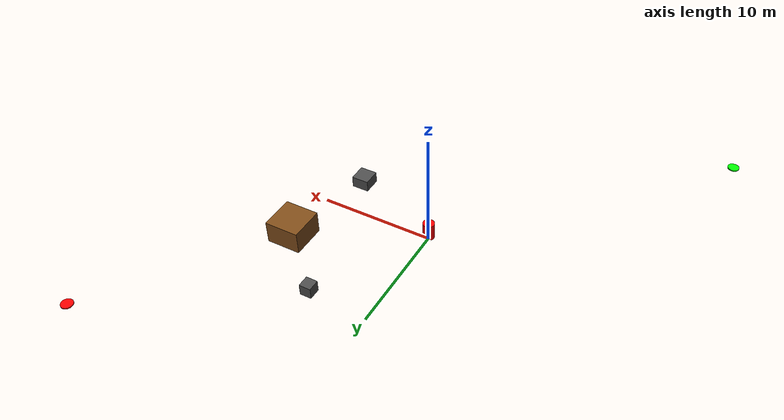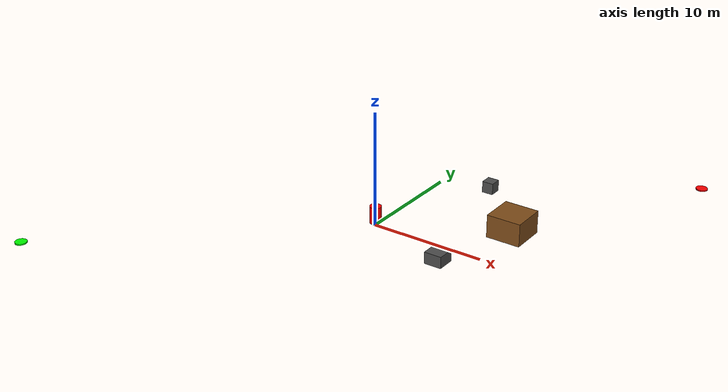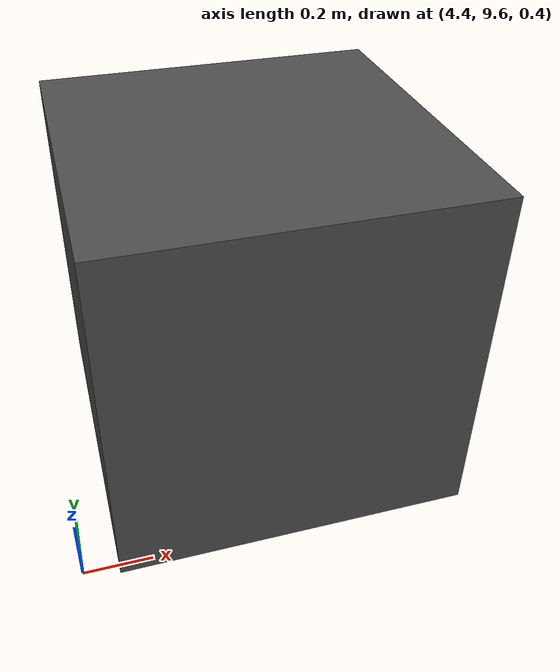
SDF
<sdf version="1.6">
 <world name="terrain_5_integrated">
  <physics type="ode">
   <real_time_update_rate>1000.0</real_time_update_rate>
   <max_step_size>0.001</max_step_size>
   <real_time_factor>1</real_time_factor>
  </physics>
  <include><uri>model://sun</uri></include>
  <model name="large_obstacle">
   <pose>10 5 1 0 0 0</pose>
   <static>true</static>
   <link name="link">
    <collision name="collision"><geometry><box><size>3 3 2</size></box></geometry></collision>
    <visual name="visual">
     <geometry><box><size>3 3 2</size></box></geometry>
     <material><ambient>0.5 0.3 0.1 1</ambient></material>
    </visual>
   </link>
  </model>
  <model name="small_obstacle_1">
   <pose>5 10 1 0 0 0</pose>
   <static>true</static>
   <link name="link">
    <collision name="collision"><geometry><box><size>1 1 1</size></box></geometry></collision>
    <visual name="visual">
     <geometry><box><size>1 1 1</size></box></geometry>
     <material><ambient>0.3 0.3 0.3 1</ambient></material>
    </visual>
   </link>
  </model>
  <model name="small_obstacle_2">
   <pose>8 -3 1 0 0 0</pose>
   <static>true</static>
   <link name="link">
    <collision name="collision"><geometry><box><size>1.5 1.5 1</size></box></geometry></collision>
    <visual name="visual">
     <geometry><box><size>1.5 1.5 1</size></box></geometry>
     <material><ambient>0.3 0.3 0.3 1</ambient></material>
    </visual>
   </link>
  </model>
  <model name="dynamic_obstacle">
   <pose>0 0 1 0 0 0</pose>
   <link name="link">
    <collision name="collision">
     <geometry><cylinder><radius>0.5</radius><length>1.5</length></cylinder></geometry>
    </collision>
    <visual name="visual">
     <geometry><cylinder><radius>0.5</radius><length>1.5</length></cylinder></geometry>
     <material><ambient>1 0 0 1</ambient></material>
    </visual>
    <inertial><mass>10</mass><inertia><ixx>1</ixx><iyy>1</iyy><izz>1</izz></inertia></inertial>
   </link>
   <plugin name="dynamic_motion" filename="libgazebo_ros_planar_move.so">
    <command_topic>cmd_vel_dynamic</command_topic>
    <odometry_topic>odom_dynamic</odometry_topic>
    <odometry_frame>odom</odometry_frame>
    <robot_base_frame>dynamic_obstacle</robot_base_frame>
    <odometry_rate>20.0</odometry_rate>
   </plugin>
  </model>
  <model name="spawn_point">
   <pose>-20 -20 1 0 0 0</pose>
   <static>true</static>
   <link name="link">
    <visual name="visual">
     <geometry><cylinder><radius>0.5</radius><length>0.1</length></cylinder></geometry>
     <material><ambient>0 1 0 1</ambient></material>
    </visual>
   </link>
  </model>
  <model name="goal_point">
   <pose>20 20 1 0 0 0</pose>
   <static>true</static>
   <link name="link">
    <visual name="visual">
     <geometry><cylinder><radius>0.5</radius><length>0.1</length></cylinder></geometry>
     <material><ambient>1 0 0 1</ambient></material>
    </visual>
   </link>
  </model>
 </world>
</sdf>
